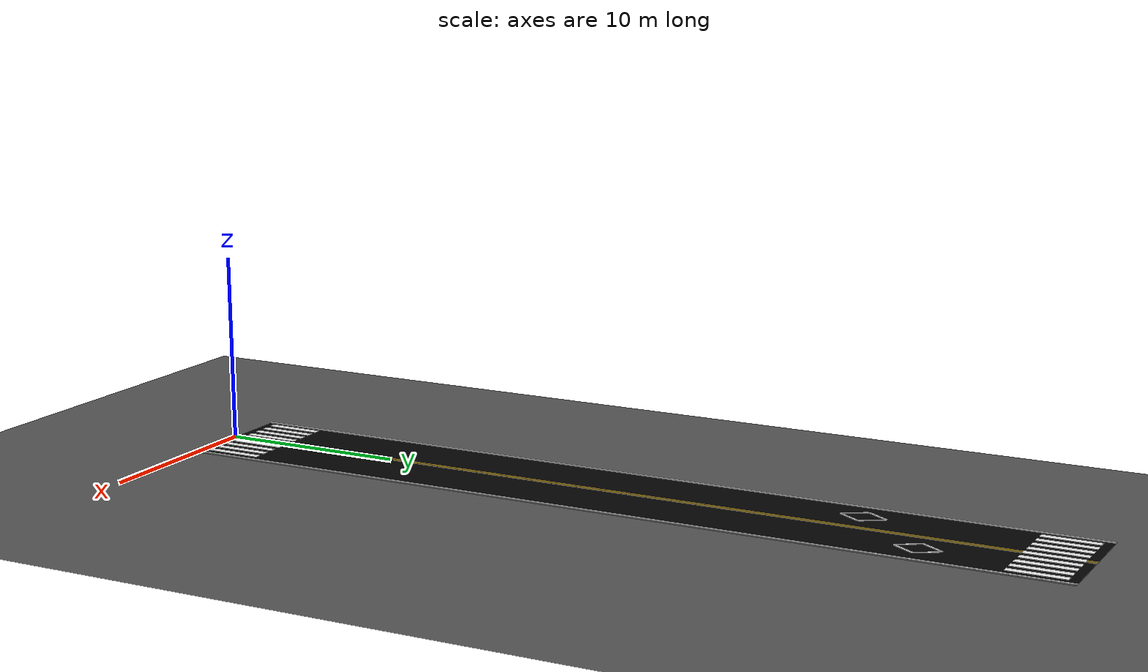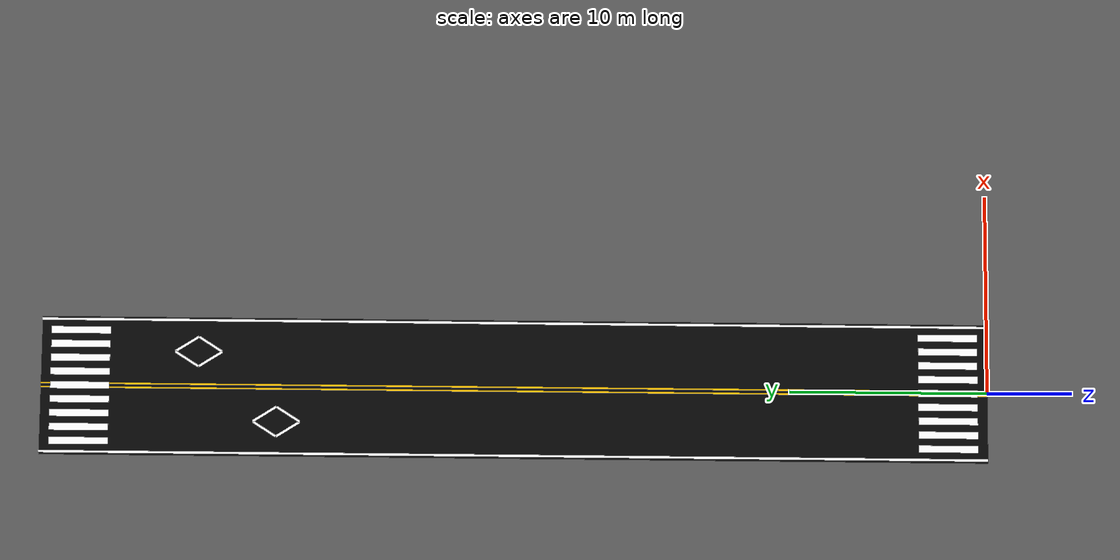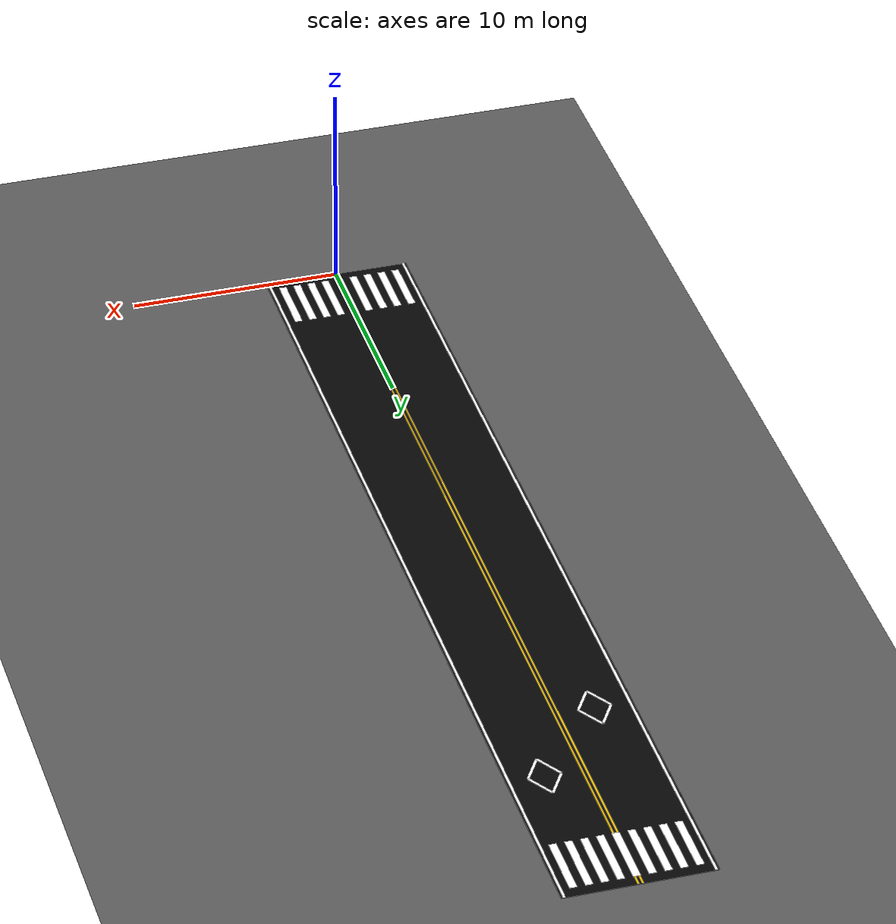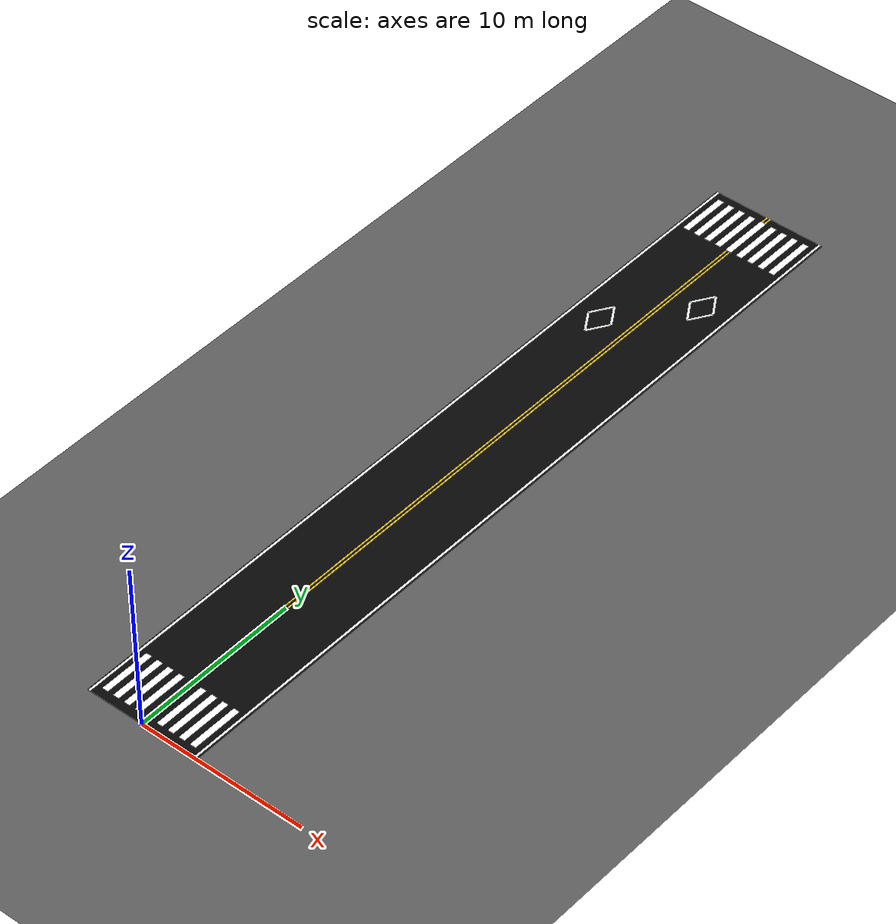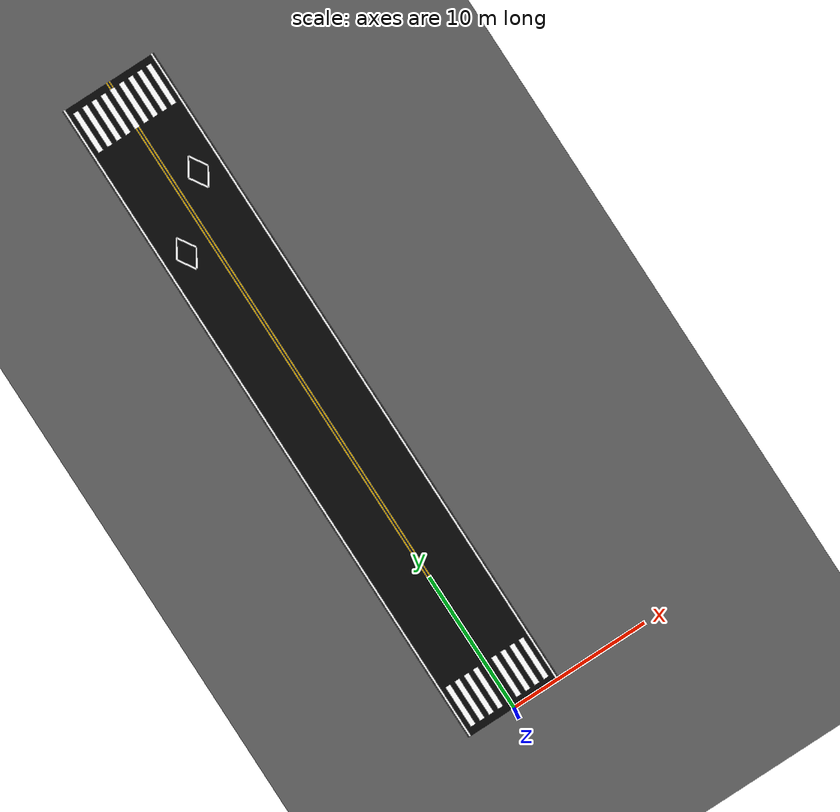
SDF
<sdf version="1.9">
 <world name="kcity_straight_road_world">
  <light name="sun" type="directional">
   <pose>0 0 10 0 0 0</pose>
   <diffuse>0.8 0.8 0.8 1</diffuse>
   <specular>0.2 0.2 0.2 1</specular>
   <direction>-0.5 0.1 -0.9</direction>
  </light>
  <model name="ground_plane">
   <static>true</static>
   <link name="ground_link">
    <collision name="collision">
     <geometry><plane><normal>0 0 1</normal><size>120 120</size></plane></geometry>
    </collision>
    <visual name="visual">
     <geometry><plane><normal>0 0 1</normal><size>120 120</size></plane></geometry>
     <material><ambient>0.35 0.35 0.35 1</ambient><diffuse>0.35 0.35 0.35 1</diffuse></material>
    </visual>
   </link>
  </model>
  <model name="straight_road_surface">
   <static>true</static>
   <pose>0 24 0.02 0 0 0</pose>
   <link name="road_link">
    <collision name="collision"><geometry><box><size>7 48 0.02</size></box></geometry></collision>
    <visual name="visual">
     <geometry><box><size>7 48 0.02</size></box></geometry>
     <material><ambient>0.02 0.02 0.02 1</ambient><diffuse>0.02 0.02 0.02 1</diffuse></material>
    </visual>
   </link>
  </model>
  <model name="left_edge_line">
   <static>true</static>
   <pose>-3.35 24 0.045 0 0 0</pose>
   <link name="link">
    <visual name="visual">
     <geometry><box><size>0.12 48 0.01</size></box></geometry>
     <material><ambient>1 1 1 1</ambient><diffuse>1 1 1 1</diffuse></material>
    </visual>
   </link>
  </model>
  <model name="right_edge_line">
   <static>true</static>
   <pose>3.35 24 0.045 0 0 0</pose>
   <link name="link">
    <visual name="visual">
     <geometry><box><size>0.12 48 0.01</size></box></geometry>
     <material><ambient>1 1 1 1</ambient><diffuse>1 1 1 1</diffuse></material>
    </visual>
   </link>
  </model>
  <model name="center_yellow_line_left">
   <static>true</static>
   <pose>-0.10 24 0.05 0 0 0</pose>
   <link name="link">
    <visual name="visual">
     <geometry><box><size>0.08 48 0.01</size></box></geometry>
     <material><ambient>1.0 0.78 0.0 1</ambient><diffuse>1.0 0.78 0.0 1</diffuse></material>
    </visual>
   </link>
  </model>
  <model name="center_yellow_line_right">
   <static>true</static>
   <pose>0.10 24 0.05 0 0 0</pose>
   <link name="link">
    <visual name="visual">
     <geometry><box><size>0.08 48 0.01</size></box></geometry>
     <material><ambient>1.0 0.78 0.0 1</ambient><diffuse>1.0 0.78 0.0 1</diffuse></material>
    </visual>
   </link>
  </model>
  <model name="crosswalk_start">
   <static>true</static>
   <link name="link">
    <visual name="s01">
     <pose>-2.8 2.0 0.06 0 0 0</pose>
     <geometry><box><size>0.35 3.0 0.01</size></box></geometry>
     <material><ambient>1 1 1 1</ambient><diffuse>1 1 1 1</diffuse></material>
    </visual>
    <visual name="s02">
     <pose>-2.1 2.0 0.06 0 0 0</pose>
     <geometry><box><size>0.35 3.0 0.01</size></box></geometry>
     <material><ambient>1 1 1 1</ambient><diffuse>1 1 1 1</diffuse></material>
    </visual>
    <visual name="s03">
     <pose>-1.4 2.0 0.06 0 0 0</pose>
     <geometry><box><size>0.35 3.0 0.01</size></box></geometry>
     <material><ambient>1 1 1 1</ambient><diffuse>1 1 1 1</diffuse></material>
    </visual>
    <visual name="s04">
     <pose>-0.7 2.0 0.06 0 0 0</pose>
     <geometry><box><size>0.35 3.0 0.01</size></box></geometry>
     <material><ambient>1 1 1 1</ambient><diffuse>1 1 1 1</diffuse></material>
    </visual>
    <visual name="s05">
     <pose>0.0 2.0 0.06 0 0 0</pose>
     <geometry><box><size>0.35 3.0 0.01</size></box></geometry>
     <material><ambient>1 1 1 1</ambient><diffuse>1 1 1 1</diffuse></material>
    </visual>
    <visual name="s06">
     <pose>0.7 2.0 0.06 0 0 0</pose>
     <geometry><box><size>0.35 3.0 0.01</size></box></geometry>
     <material><ambient>1 1 1 1</ambient><diffuse>1 1 1 1</diffuse></material>
    </visual>
    <visual name="s07">
     <pose>1.4 2.0 0.06 0 0 0</pose>
     <geometry><box><size>0.35 3.0 0.01</size></box></geometry>
     <material><ambient>1 1 1 1</ambient><diffuse>1 1 1 1</diffuse></material>
    </visual>
    <visual name="s08">
     <pose>2.1 2.0 0.06 0 0 0</pose>
     <geometry><box><size>0.35 3.0 0.01</size></box></geometry>
     <material><ambient>1 1 1 1</ambient><diffuse>1 1 1 1</diffuse></material>
    </visual>
    <visual name="s09">
     <pose>2.8 2.0 0.06 0 0 0</pose>
     <geometry><box><size>0.35 3.0 0.01</size></box></geometry>
     <material><ambient>1 1 1 1</ambient><diffuse>1 1 1 1</diffuse></material>
    </visual>
   </link>
  </model>
  <model name="crosswalk_end">
   <static>true</static>
   <link name="link">
    <visual name="s01">
     <pose>-2.8 46.0 0.06 0 0 0</pose>
     <geometry><box><size>0.35 3.0 0.01</size></box></geometry>
     <material><ambient>1 1 1 1</ambient><diffuse>1 1 1 1</diffuse></material>
    </visual>
    <visual name="s02">
     <pose>-2.1 46.0 0.06 0 0 0</pose>
     <geometry><box><size>0.35 3.0 0.01</size></box></geometry>
     <material><ambient>1 1 1 1</ambient><diffuse>1 1 1 1</diffuse></material>
    </visual>
    <visual name="s03">
     <pose>-1.4 46.0 0.06 0 0 0</pose>
     <geometry><box><size>0.35 3.0 0.01</size></box></geometry>
     <material><ambient>1 1 1 1</ambient><diffuse>1 1 1 1</diffuse></material>
    </visual>
    <visual name="s04">
     <pose>-0.7 46.0 0.06 0 0 0</pose>
     <geometry><box><size>0.35 3.0 0.01</size></box></geometry>
     <material><ambient>1 1 1 1</ambient><diffuse>1 1 1 1</diffuse></material>
    </visual>
    <visual name="s05">
     <pose>0.0 46.0 0.06 0 0 0</pose>
     <geometry><box><size>0.35 3.0 0.01</size></box></geometry>
     <material><ambient>1 1 1 1</ambient><diffuse>1 1 1 1</diffuse></material>
    </visual>
    <visual name="s06">
     <pose>0.7 46.0 0.06 0 0 0</pose>
     <geometry><box><size>0.35 3.0 0.01</size></box></geometry>
     <material><ambient>1 1 1 1</ambient><diffuse>1 1 1 1</diffuse></material>
    </visual>
    <visual name="s07">
     <pose>1.4 46.0 0.06 0 0 0</pose>
     <geometry><box><size>0.35 3.0 0.01</size></box></geometry>
     <material><ambient>1 1 1 1</ambient><diffuse>1 1 1 1</diffuse></material>
    </visual>
    <visual name="s08">
     <pose>2.1 46.0 0.06 0 0 0</pose>
     <geometry><box><size>0.35 3.0 0.01</size></box></geometry>
     <material><ambient>1 1 1 1</ambient><diffuse>1 1 1 1</diffuse></material>
    </visual>
    <visual name="s09">
     <pose>2.8 46.0 0.06 0 0 0</pose>
     <geometry><box><size>0.35 3.0 0.01</size></box></geometry>
     <material><ambient>1 1 1 1</ambient><diffuse>1 1 1 1</diffuse></material>
    </visual>
   </link>
  </model>
  <model name="diamond_left_lane">
   <static>true</static>
   <pose>-1.75 36 0.07 0 0 0</pose>
   <link name="link">
    <visual name="upper_left">
     <pose>-0.375 0.6 0 0 0 -0.5586</pose>
     <geometry><box><size>0.12 1.4 0.01</size></box></geometry>
     <material><ambient>1 1 1 1</ambient><diffuse>1 1 1 1</diffuse></material>
    </visual>
    <visual name="upper_right">
     <pose>0.375 0.6 0 0 0 0.5586</pose>
     <geometry><box><size>0.12 1.4 0.01</size></box></geometry>
     <material><ambient>1 1 1 1</ambient><diffuse>1 1 1 1</diffuse></material>
    </visual>
    <visual name="lower_left">
     <pose>-0.375 -0.6 0 0 0 0.5586</pose>
     <geometry><box><size>0.12 1.4 0.01</size></box></geometry>
     <material><ambient>1 1 1 1</ambient><diffuse>1 1 1 1</diffuse></material>
    </visual>
    <visual name="lower_right">
     <pose>0.375 -0.6 0 0 0 -0.5586</pose>
     <geometry><box><size>0.12 1.4 0.01</size></box></geometry>
     <material><ambient>1 1 1 1</ambient><diffuse>1 1 1 1</diffuse></material>
    </visual>
   </link>
  </model>
  <model name="diamond_right_lane">
   <static>true</static>
   <pose>1.75 40 0.07 0 0 0</pose>
   <link name="link">
    <visual name="upper_left">
     <pose>-0.375 0.6 0 0 0 -0.5586</pose>
     <geometry><box><size>0.12 1.4 0.01</size></box></geometry>
     <material><ambient>1 1 1 1</ambient><diffuse>1 1 1 1</diffuse></material>
    </visual>
    <visual name="upper_right">
     <pose>0.375 0.6 0 0 0 0.5586</pose>
     <geometry><box><size>0.12 1.4 0.01</size></box></geometry>
     <material><ambient>1 1 1 1</ambient><diffuse>1 1 1 1</diffuse></material>
    </visual>
    <visual name="lower_left">
     <pose>-0.375 -0.6 0 0 0 0.5586</pose>
     <geometry><box><size>0.12 1.4 0.01</size></box></geometry>
     <material><ambient>1 1 1 1</ambient><diffuse>1 1 1 1</diffuse></material>
    </visual>
    <visual name="lower_right">
     <pose>0.375 -0.6 0 0 0 -0.5586</pose>
     <geometry><box><size>0.12 1.4 0.01</size></box></geometry>
     <material><ambient>1 1 1 1</ambient><diffuse>1 1 1 1</diffuse></material>
    </visual>
   </link>
  </model>
 </world>
</sdf>
